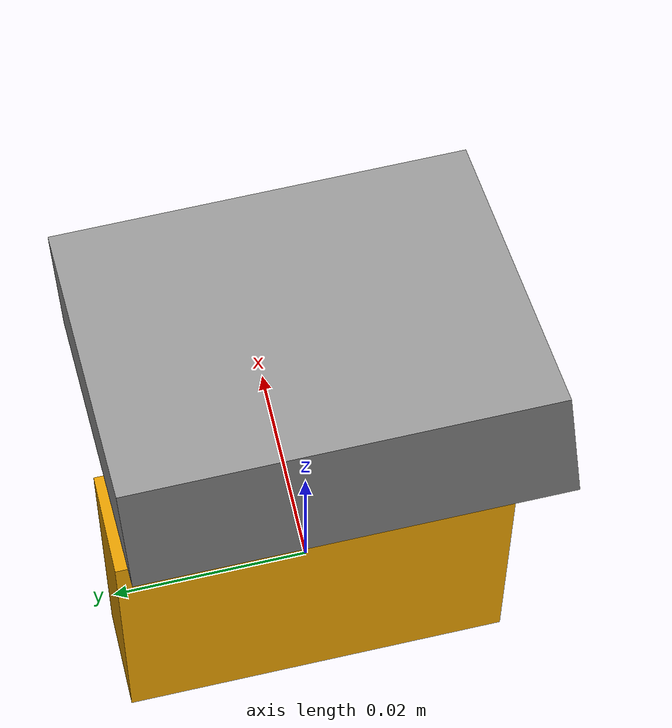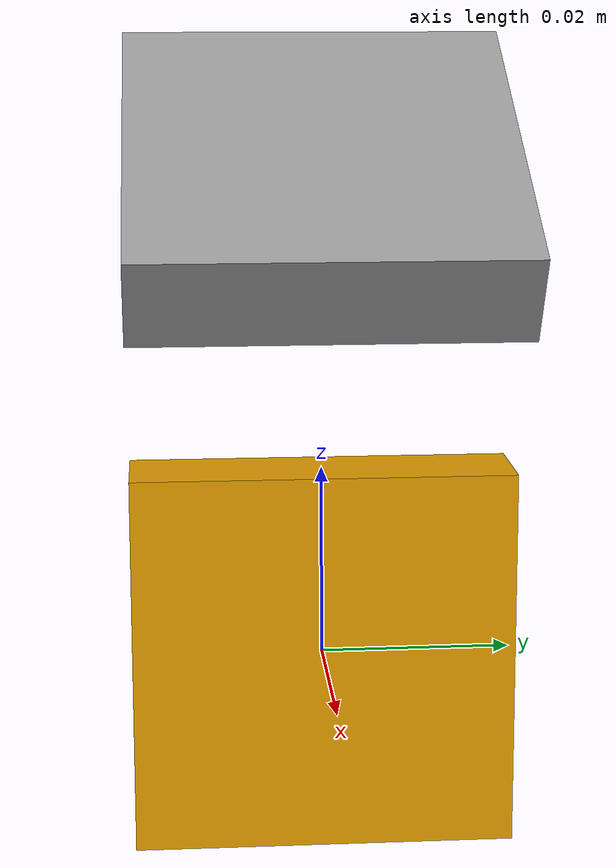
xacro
<?xml version="1.0"?>
<robot xmlns:xacro="http://www.ros.org/wiki/xacro" >

    <xacro:property name="camera_downward_angle" value="1.0472"/>
    <xacro:property name="camera_horizontal_fov" value="1.74533"/> <!--100 degrees-->
    <xacro:property name="camera_horizontal_pixels" value="1920"/>
    <xacro:property name="camera_vertical_pixels" value="1080"/>
    <xacro:property name="camera_framerate" value="10"/>
    <xacro:property name="camera_segm_enable" value="false"/>

    <link name="remote_calc_base">
        <inertial>
            <mass value="0.01"/>
            <origin xyz="0 0 0" rpy="0 0 0"/>
            <inertia
                ixx="1e-6" ixy="0.0" ixz="0.0"
                iyy="1e-6" iyz="0.0"
                izz="1e-6"/>
        </inertial>
        <visual>
            <geometry>
                <box size="0.010 0.04 0.04"/>
            </geometry>
        </visual>
        <collision>
            <geometry>
                <box size="0.010 0.04 0.04"/>
            </geometry>
        </collision>
    </link>

    <gazebo reference="remote_calc_base">
        <!-- making the  camera static so it doesnt move as it is associated with the playing area -->
        <static>true</static>
        <gravity>0</gravity>
    </gazebo>

    <joint name="camera1_joint" type="fixed">
        <parent link="remote_calc_base"/>
        <child link="camera1_link"/>
        <origin xyz="0.0 0 0.05" rpy="0 ${camera_downward_angle} -3.141592"/>
    </joint>

    <link name="camera1_link">
        <origin xyz="0 0 0" rpy="0 0 -1.57"/>
        <visual>
            <geometry>
                <box size="0.010 0.04 0.04"/>
            </geometry>
        </visual>
    </link>

    <joint name="camera1_optical_joint" type="fixed">
        <parent link="camera1_link"/>
        <child link="camera1_link_optical"/>
        <origin xyz="0 0 0" rpy="${pi/2} 0 ${pi/2}"/>
    </joint>

    <link name="camera1_link_optical"></link>

    <gazebo reference="camera1_link">
        <material>Gazebo/Grey</material>

        <sensor name="camera1" type="camera">
            <topic>$(arg namespace)/remote_calc_cam1/img_raw</topic>
            <visualize>1</visualize>
            <camera>
            <horizontal_fov>${camera_horizontal_fov}</horizontal_fov>
            <image>
                <width>${camera_horizontal_pixels}</width>
                <height>${camera_vertical_pixels}</height>
            </image>
            <clip>
                <near>0.1</near>
                <far>10</far>
            </clip>
            </camera>
            <always_on>1</always_on>
            <update_rate>${camera_framerate}</update_rate>
        </sensor>
        <xacro:if value="${camera_segm_enable}">
            <sensor name="segmentation_camera1" type="segmentation">
            <topic>$(arg namespace)/camera1_segm</topic>
            <camera>
                <segmentation_type>instance</segmentation_type>
                <horizontal_fov>${camera_horizontal_fov}</horizontal_fov>
                <image>
                    <width>${camera_horizontal_pixels}</width>
                    <height>${camera_vertical_pixels}</height>
                </image>
                <clip>
                <near>0.1</near>
                <far>10</far>
                </clip>
            </camera>
            <always_on>1</always_on>
            <update_rate>${camera_framerate}</update_rate>
            <visualize>true</visualize>
            </sensor>
        </xacro:if>
    </gazebo>

</robot>
